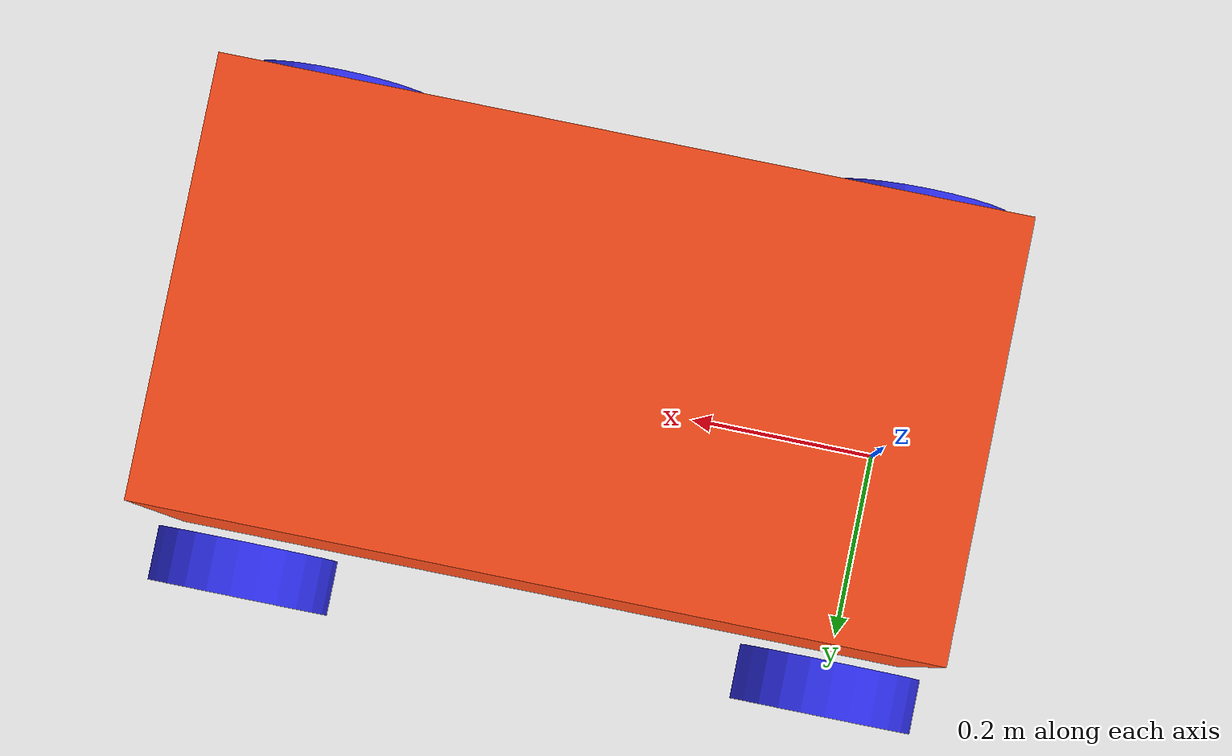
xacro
<?xml version="1.0"?>
<robot xmlns:xacro="http://www.ros.org/wiki/xacro" >

    <xacro:include filename="inertial_macros.xacro"/>

    <xacro:property name="chassis_length" value="0.8"/>
    <xacro:property name="chassis_width" value="0.44"/>
    <xacro:property name="chassis_height" value="0.6"/>
    <xacro:property name="chassis_mass" value="30.0"/>
    <xacro:property name="rear_wheel_radius" value="0.1"/>
    <xacro:property name="rear_wheel_thickness" value="0.06"/>
    <xacro:property name="rear_wheel_mass" value="0.25"/>
    <xacro:property name="rear_wheel_offset_x" value="0.075"/>
    <xacro:property name="rear_wheel_offset_y" value="0.26"/>
    <xacro:property name="rear_wheel_offset_z" value="0.01"/>
    <xacro:property name="front_wheel_radius" value="0.1"/>
    <xacro:property name="front_wheel_thickness" value="0.06"/>
    <xacro:property name="front_wheel_mass" value="0.25"/>
    <xacro:property name="front_wheel_offset_x" value="-0.65"/>
    <xacro:property name="front_wheel_offset_y" value="-0.26"/>
    <xacro:property name="front_wheel_offset_z" value="0.01"/>

    <material name="white">
        <color rgba="1 1 1 1"/>
    </material>

    <material name="orange">
        <color rgba="1 0.3 0.1 1"/>
    </material>

    <material name="blue">
        <color rgba="0.2 0.2 1 1"/>
    </material>

    <material name="black">
        <color rgba="0 0 0 1"/>
    </material>

    <material name="red">
        <color rgba="1 0 0 1"/>
    </material>

    <!-- BASE LINK -->

    <link name="base_link">

    </link>

    <!-- BASE_FOOTPRINT LINK -->

    <joint name="base_footprint_joint" type="fixed">
        <parent link="base_link"/>
        <child link="base_footprint"/>
        <origin xyz="0 0 0" rpy="0 0 0"/>
    </joint>

    <link name="base_footprint">
    </link>

    <!-- CHASSIS LINK -->

    <joint name="chassis_joint" type="fixed">
        <parent link="base_link"/>
        <child link="chassis"/>
        <origin xyz="${-rear_wheel_offset_x} 0 ${-rear_wheel_offset_z}"/>
    </joint>

    <link name="chassis">
        <visual>
            <origin xyz="${chassis_length/2} 0 ${chassis_height/2}"/>
            <geometry>
                <box size="${chassis_length} ${chassis_width} ${chassis_height}"/>
            </geometry>
            <material name="orange"/>
        </visual>
        <collision>
            <origin xyz="${chassis_length/2} 0 ${chassis_height/2}"/>
            <geometry>
                <box size="${chassis_length} ${chassis_width} ${chassis_height}"/>
            </geometry>
        </collision>
        <xacro:inertial_box mass="${chassis_mass}" x="${chassis_length}" y="${chassis_width}" z="${chassis_height}">
            <origin xyz="${chassis_length/2} 0 ${chassis_height/2}" rpy="0 0 0"/>
        </xacro:inertial_box>
    </link>

    <gazebo reference="chassis">
        <material>Gazebo/Orange</material>
    </gazebo>

    <!-- LEFT REAR WHEEL LINK -->

    <joint name="left_rear_wheel_joint" type="continuous">
        <parent link="base_link"/>
        <child link="left_rear_wheel"/>
        <origin xyz="0 ${rear_wheel_offset_y} 0" rpy="-${pi/2} 0 0" />
        <axis xyz="0 0 1"/>
    </joint>

    <link name="left_rear_wheel">
        <visual>
            <geometry>
                <cylinder radius="${rear_wheel_radius}" length="${rear_wheel_thickness}"/>
            </geometry>
            <material name="blue"/>
        </visual>
        <collision>
            <geometry>
                <sphere radius="${rear_wheel_radius}"/>
            </geometry>
        </collision>
        <xacro:inertial_cylinder mass="${rear_wheel_mass}" length="${rear_wheel_thickness}" radius="${rear_wheel_radius}">
            <origin xyz="0 0 0" rpy="0 0 0"/>
        </xacro:inertial_cylinder>
    </link>

    <gazebo reference="left_rear_wheel">
        <material>Gazebo/Blue</material>
    </gazebo>

    <!-- RIGHT REAR WHEEL LINK -->

    <joint name="right_rear_wheel_joint" type="continuous">
        <parent link="base_link"/>
        <child link="right_rear_wheel"/>
        <origin xyz="0 ${-rear_wheel_offset_y} 0" rpy="${pi/2} 0 0" />
        <axis xyz="0 0 -1"/>
    </joint>

    <link name="right_rear_wheel">
        <visual>
            <geometry>
                <cylinder radius="${rear_wheel_radius}" length="${rear_wheel_thickness}"/>
            </geometry>
            <material name="blue"/>
        </visual>
        <collision>
            <geometry>
                <sphere radius="${rear_wheel_radius}"/>
            </geometry>
        </collision>
        <xacro:inertial_cylinder mass="${rear_wheel_mass}" length="${rear_wheel_thickness}" radius="${rear_wheel_radius}">
            <origin xyz="0 0 0" rpy="0 0 0"/>
        </xacro:inertial_cylinder>
    </link>

    <gazebo reference="right_rear_wheel">
        <material>Gazebo/Blue</material>
    </gazebo>

    <!-- LEFT FRONT WHEEL LINK -->

    <joint name="left_front_wheel_joint" type="continuous">
        <parent link="base_link"/>
        <child link="left_front_wheel"/>
        <origin xyz="${-front_wheel_offset_x} ${-front_wheel_offset_y} 0" rpy="-${pi/2} 0 0" />
        <axis xyz="0 0 1"/>
    </joint>

    <link name="left_front_wheel">
        <visual>
            <geometry>
                <cylinder radius="${front_wheel_radius}" length="${front_wheel_thickness}"/>
            </geometry>
            <material name="blue"/>
        </visual>
        <collision>
            <geometry>
                <sphere radius="${front_wheel_radius}"/>
            </geometry>
        </collision>
        <xacro:inertial_cylinder mass="${front_wheel_mass}" length="${front_wheel_thickness}" radius="${front_wheel_radius}">
            <origin xyz="0 0 0" rpy="0 0 0"/>
        </xacro:inertial_cylinder>
    </link>

    <gazebo reference="left_front_wheel">
        <material>Gazebo/Blue</material>
    </gazebo>

    <!-- RIGHT FRONT WHEEL LINK -->

    <joint name="right_front_wheel_joint" type="continuous">
        <parent link="base_link"/>
        <child link="right_front_wheel"/>
        <origin xyz="${-front_wheel_offset_x} ${front_wheel_offset_y} 0" rpy="${pi/2} 0 0" />
        <axis xyz="0 0 -1"/>
    </joint>

    <link name="right_front_wheel">
        <visual>
            <geometry>
                <cylinder radius="${front_wheel_radius}" length="${front_wheel_thickness}"/>
            </geometry>
            <material name="blue"/>
        </visual>
        <collision>
            <geometry>
                <sphere radius="${front_wheel_radius}"/>
            </geometry>
        </collision>
        <xacro:inertial_cylinder mass="${front_wheel_mass}" length="${front_wheel_thickness}" radius="${front_wheel_radius}">
            <origin xyz="0 0 0" rpy="0 0 0"/>
        </xacro:inertial_cylinder>
    </link>

    <gazebo reference="right_front_wheel">
        <material>Gazebo/Blue</material>
    </gazebo>

    <!-- SURTUNME KATSAYILARI -->

    <gazebo reference="left_front_wheel">
        <mu1 value="0.1"/>
        <mu2 value="0.1"/>
    </gazebo>

    <gazebo reference="left_rear_wheel">
        <mu1 value="0.1"/>
        <mu2 value="0.1"/>
    </gazebo>

    <gazebo reference="right_front_wheel">
        <mu1 value="0.1"/>
        <mu2 value="0.1"/>
    </gazebo>

    <gazebo reference="right_rear_wheel">
        <mu1 value="0.1"/>
        <mu2 value="0.1"/>
    </gazebo>

</robot>
